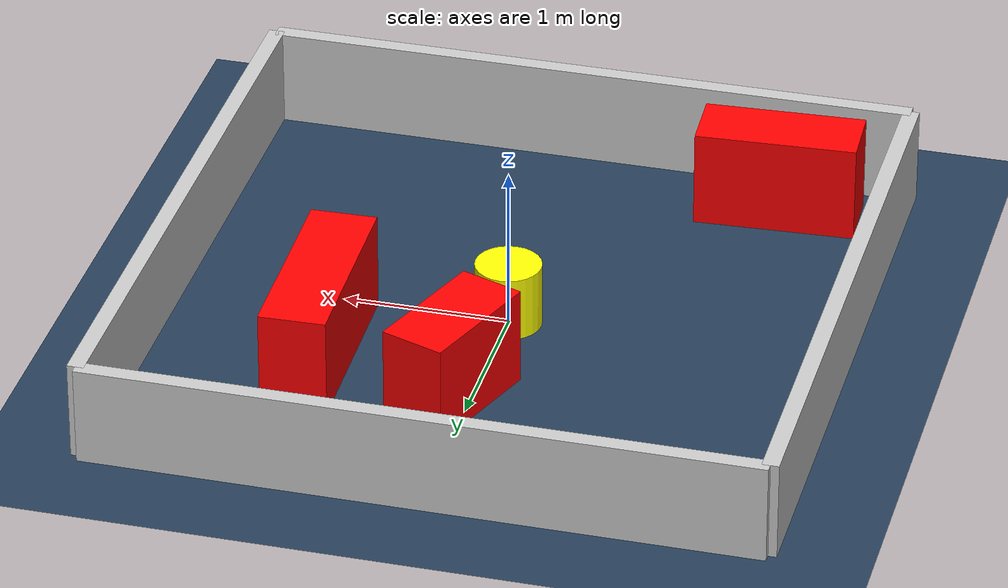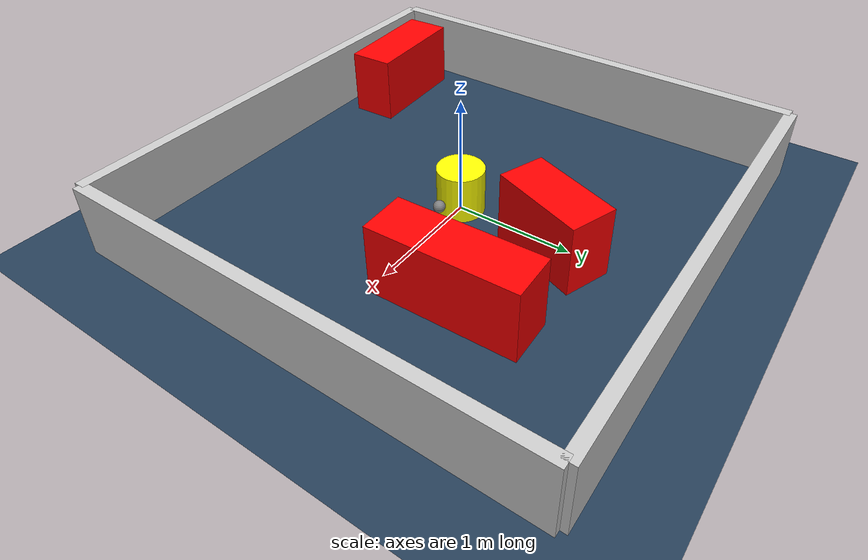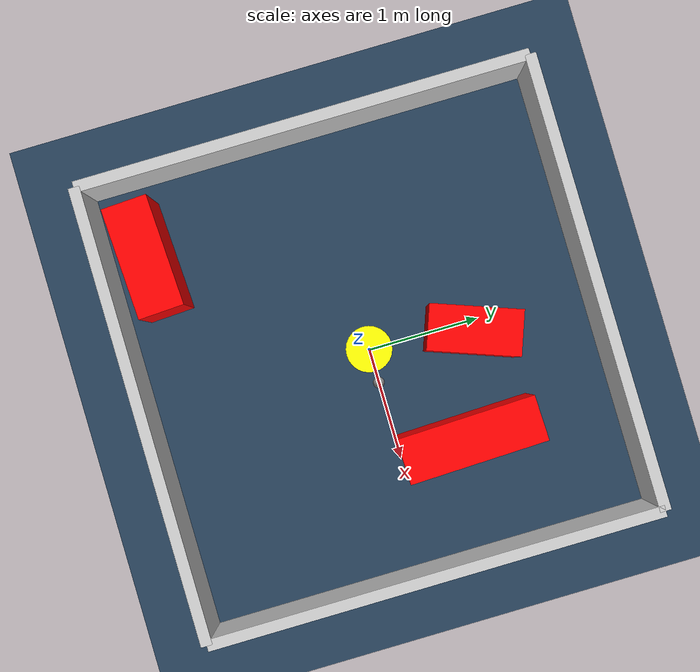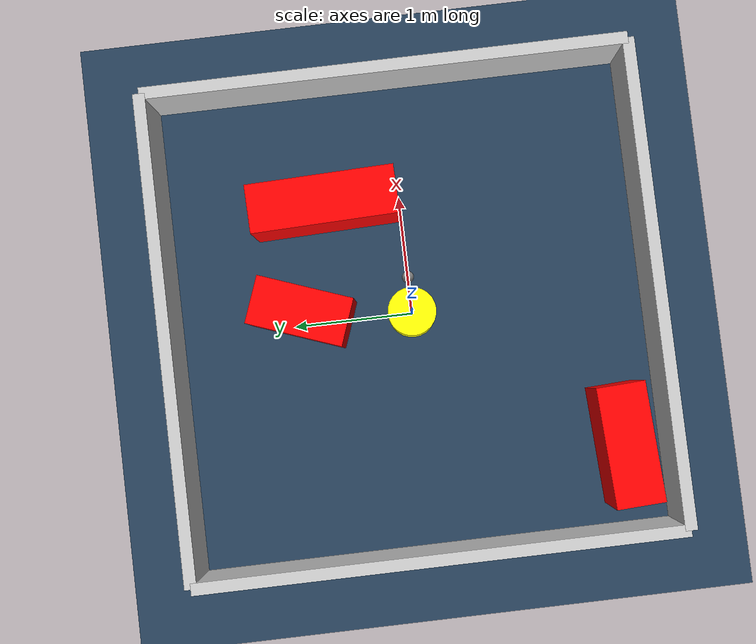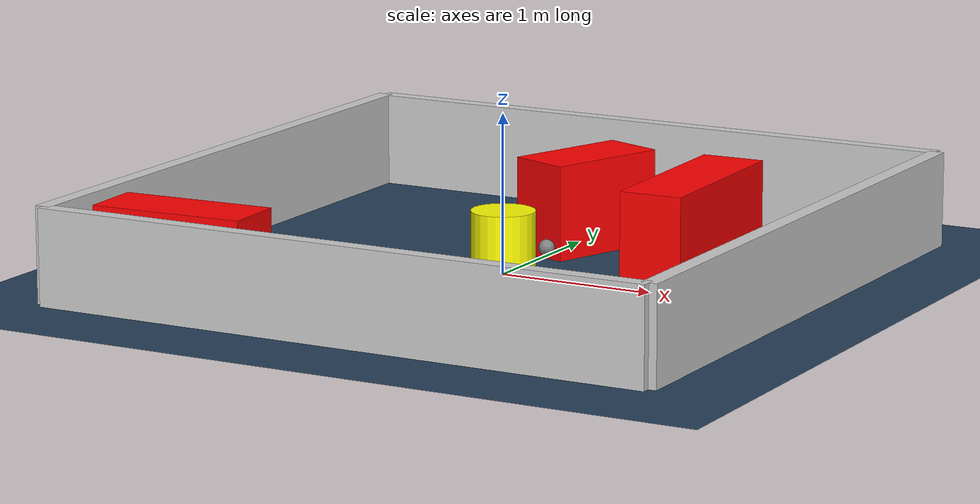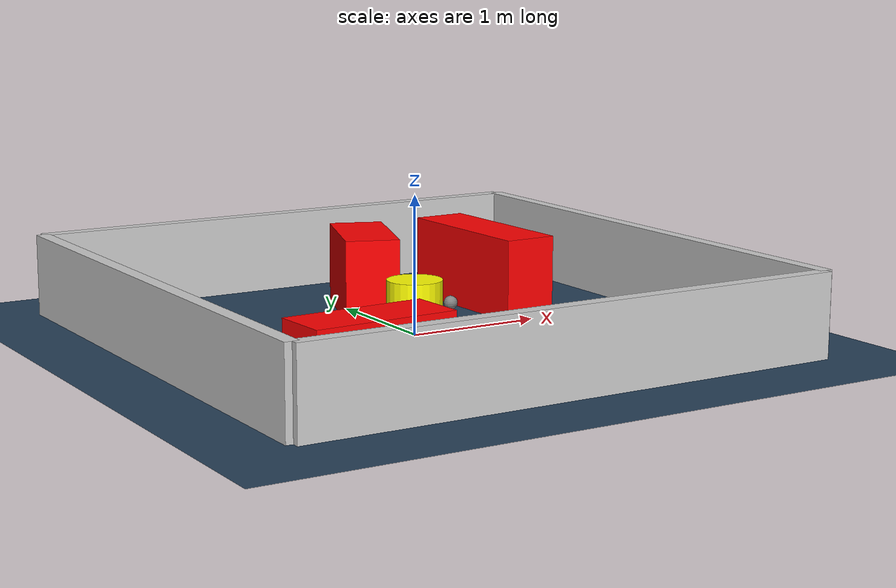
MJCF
<?xml version="1.0" ?>
<mujoco model="generated_environment">
  <option timestep="0.01" integrator="RK4" cone="elliptic"/>
  <default>
    <geom density="1"/>
  </default>
  <asset>
    <texture builtin="gradient" height="3072" rgb1="0.3 0.5 0.7" rgb2="0 0 0" type="skybox" width="512"/>
    <texture builtin="checker" height="300" mark="edge" markrgb="0.8 0.8 0.8" name="groundplane" rgb1="0.2 0.3 0.4" rgb2="0.1 0.2 0.3" type="2d" width="300"/>
    <material name="groundplane" reflectance="0.2" texrepeat="5 5" texture="groundplane" texuniform="true"/>
    <material name="robot" rgba="0.0 1.0 0.0 1"/>
  </asset>
  <worldbody>
    <light dir="0 0 -1" directional="true" pos="0 0 1.5"/>
    <geom condim="4" friction="1.0 0.005 0.001" material="groundplane" name="floor" size="0 0 0.05" type="plane"/>
    <body name="walls">
      <geom name="wall_1" condim="4" pos="-2.0 0.0 0.3" rgba="0.800000011920929 0.800000011920929 0.800000011920929 1.0" size="0.05 2.0 0.3" type="box"/>
      <geom name="wall_2" condim="4" pos="2.0 0.0 0.3" rgba="0.800000011920929 0.800000011920929 0.800000011920929 1.0" size="0.05 2.0 0.3" type="box"/>
      <geom name="wall_3" condim="4" pos="0.0 -2.0 0.3" rgba="0.800000011920929 0.800000011920929 0.800000011920929 1.0" size="2.0 0.05 0.3" type="box"/>
      <geom name="wall_4" condim="4" pos="0.0 2.0 0.3" rgba="0.800000011920929 0.800000011920929 0.800000011920929 1.0" size="2.0 0.05 0.3" type="box"/>
    </body>
    <body name="robot">
      <joint name="joint_x" type="slide" pos="0 0 0" axis="1 0 0"/>
      <joint name="joint_y" type="slide" pos="0 0 0" axis="0 1 0"/>
      <geom name="robot" type="sphere" pos="0.3 0.0 0.2" size="0.05" mass="5." friction="1.0 0.005 0.0001" condim="4" rgba="0.5 0.5 0.5 1.0"/>
      <site name="sensor_ball"/>
    </body>
    <body name="obstacle_movable_1">
      <geom name="obstacle_movable_1" condim="4" pos="0.0 0.0 0.2" euler="0 0 0.0" friction="1.0 0.005 0.001" rgba="1.0 1.0 0.0 1.0" size="0.2 0.2 0.0" type="cylinder" mass="0.1"/>
      <joint type="free"/>
    </body>
    <body name="obstacle_2_static">
      <geom name="obstacle_2_static" condim="4" pos="0.09950294559664496 0.9013329500705616 0.3" euler="0 0 249.86538879588088" friction="1.0 0.005 0.001" rgba="1 0 0 1" size="0.40110873460410995 0.2 0.3" type="box"/>
    </body>
    <body name="obstacle_3_static">
      <geom name="obstacle_3_static" condim="4" pos="-1.2759200716739052 -1.6092398595387978 0.3" euler="0 0 182.7894100183544" friction="1.0 0.005 0.001" rgba="1 0 0 1" size="0.49000471562137865 0.2 0.3" type="box"/>
    </body>
    <body name="obstacle_4_static">
      <geom name="obstacle_4_static" condim="4" pos="0.9775752845503791 0.6185404081765602 0.3" euler="0 0 271.5917314255108" friction="1.0 0.005 0.001" rgba="1 0 0 1" size="0.6094652221228049 0.2 0.3" type="box"/>
    </body>
  </worldbody>
  <actuator>
    <motor name="actuator_x" joint="joint_x" gear="1" ctrlrange="-1 1"/>
    <motor name="actuator_y" joint="joint_y" gear="1" ctrlrange="-1 1"/>
  </actuator>
</mujoco>
